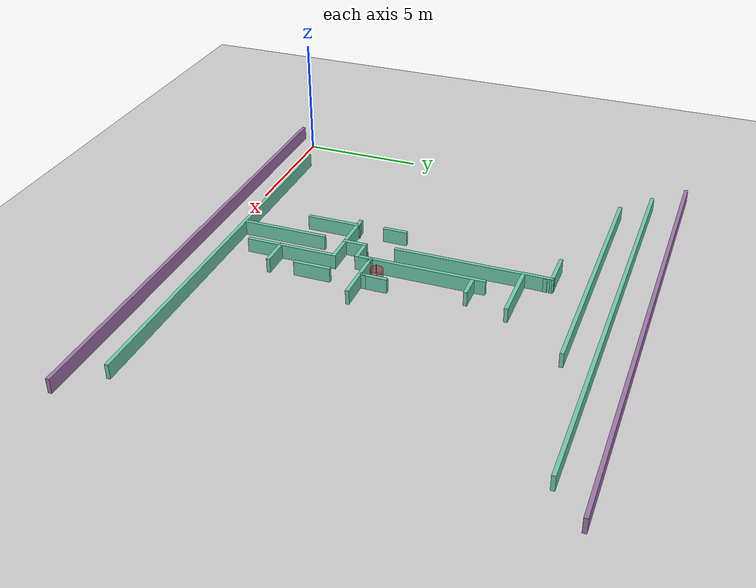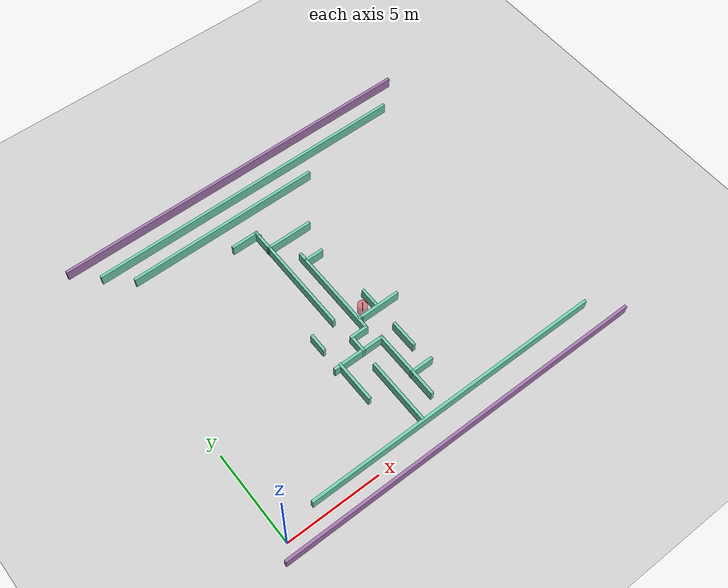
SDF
<sdf version="1.7">
 <world name="default">
  <model name="ground_plane">
   <static>1</static>
   <link name="link">
    <collision name="collision">
     <geometry><plane><normal>0 0 1</normal><size>100 100</size></plane></geometry>
     <surface><friction><ode><mu>100</mu><mu2>50</mu2></ode></friction></surface>
    </collision>
    <visual name="visual">
     <cast_shadows>0</cast_shadows>
     <geometry><plane><normal>0 0 1</normal><size>100 100</size></plane></geometry>
     <material>
      <script><uri>file://media/materials/scripts/gazebo.material</uri><name>Gazebo/Grey</name></script>
     </material>
    </visual>
   </link>
  </model>
  <model name="goal">
   <static>true</static>
   <pose>9.56186 6.95623 0.3 0 0 0</pose>
   <link name="link">
    <visual name="visual">
     <geometry><cylinder><radius>0.25</radius><length>0.6</length></cylinder></geometry>
     <material>
      <script><name>Gazebo/RedTransparent</name><uri>file://media/materials/scripts/gazebo.material</uri></script>
     </material>
    </visual>
   </link>
   <link name="link2">
    <visual name="visual2">
     <geometry><cylinder><radius>0.01</radius><length>1</length></cylinder></geometry>
     <material>
      <script><name>Gazebo/Blue</name><uri>file://media/materials/scripts/gazebo.material</uri></script>
     </material>
    </visual>
   </link>
  </model>
  <model name="complicated_maze">
   <pose>-457.073 -167.601 0 0 -0 0</pose>
   <link name="Wall_108">
    <collision name="Wall_108_Collision">
     <geometry><box><size>1.5 0.15 0.6</size></box></geometry>
     <pose>0 0 0.3 0 -0 0</pose>
    </collision>
    <visual name="Wall_108_Visual">
     <pose>0 0 0.3 0 -0 0</pose>
     <geometry><box><size>1.5 0.15 0.6</size></box></geometry>
     <material>
      <script><uri>file://media/materials/scripts/gazebo.material</uri><name>Gazebo/Grey</name></script>
      <ambient>0.435294 0.796078 0.67451 1</ambient>
      <ambient>1 1 1 1</ambient>
     </material>
     <meta><layer>0</layer></meta>
    </visual>
    <pose>464.348 180.966 0 0 -0 0</pose>
   </link>
   <link name="Wall_109">
    <collision name="Wall_109_Collision">
     <geometry><box><size>1.25004 0.15 0.6</size></box></geometry>
     <pose>0 0 0.3 0 -0 0</pose>
    </collision>
    <visual name="Wall_109_Visual">
     <pose>0 0 0.3 0 -0 0</pose>
     <geometry><box><size>1.25004 0.15 0.6</size></box></geometry>
     <material>
      <script><uri>file://media/materials/scripts/gazebo.material</uri><name>Gazebo/Grey</name></script>
      <ambient>0.435294 0.796078 0.67451 1</ambient>
      <ambient>1 1 1 1</ambient>
     </material>
     <meta><layer>0</layer></meta>
    </visual>
    <pose>465.02 180.416 0 0 -0 -1.57624</pose>
   </link>
   <link name="Wall_113">
    <collision name="Wall_113_Collision">
     <geometry><box><size>5.25 0.15 0.6</size></box></geometry>
     <pose>0 0 0.3 0 -0 0</pose>
    </collision>
    <visual name="Wall_113_Visual">
     <pose>0 0 0.3 0 -0 0</pose>
     <geometry><box><size>5.25 0.15 0.6</size></box></geometry>
     <material>
      <script><uri>file://media/materials/scripts/gazebo.material</uri><name>Gazebo/Grey</name></script>
      <ambient>0.435294 0.796078 0.67451 1</ambient>
      <ambient>1 1 1 1</ambient>
     </material>
     <meta><layer>0</layer></meta>
    </visual>
    <pose>465.032 177.316 0 0 -0 -1.5708</pose>
   </link>
   <link name="Wall_117">
    <collision name="Wall_117_Collision">
     <geometry><box><size>1.75 0.15 0.6</size></box></geometry>
     <pose>0 0 0.3 0 -0 0</pose>
    </collision>
    <visual name="Wall_117_Visual">
     <pose>0 0 0.3 0 -0 0</pose>
     <geometry><box><size>1.75 0.15 0.6</size></box></geometry>
     <material>
      <script><uri>file://media/materials/scripts/gazebo.material</uri><name>Gazebo/Grey</name></script>
      <ambient>0.435294 0.796078 0.67451 1</ambient>
      <ambient>1 1 1 1</ambient>
     </material>
     <meta><layer>0</layer></meta>
    </visual>
    <pose>464.365 172.657 0 0 -0 0</pose>
   </link>
   <link name="Wall_118">
    <collision name="Wall_118_Collision">
     <geometry><box><size>1 0.15 0.6</size></box></geometry>
     <pose>0 0 0.3 0 -0 0</pose>
    </collision>
    <visual name="Wall_118_Visual">
     <pose>0 0 0.3 0 -0 0</pose>
     <geometry><box><size>1 0.15 0.6</size></box></geometry>
     <material>
      <script><uri>file://media/materials/scripts/gazebo.material</uri><name>Gazebo/Grey</name></script>
      <ambient>0.435294 0.796078 0.67451 1</ambient>
      <ambient>1 1 1 1</ambient>
     </material>
     <meta><layer>0</layer></meta>
    </visual>
    <pose>465.165 173.082 0 0 -0 1.5708</pose>
   </link>
   <link name="Wall_120">
    <collision name="Wall_120_Collision">
     <geometry><box><size>1 0.15 0.6</size></box></geometry>
     <pose>0 0 0.3 0 -0 0</pose>
    </collision>
    <visual name="Wall_120_Visual">
     <pose>0 0 0.3 0 -0 0</pose>
     <geometry><box><size>1 0.15 0.6</size></box></geometry>
     <material>
      <script><uri>file://media/materials/scripts/gazebo.material</uri><name>Gazebo/Grey</name></script>
      <ambient>0.435294 0.796078 0.67451 1</ambient>
      <ambient>1 1 1 1</ambient>
     </material>
     <meta><layer>0</layer></meta>
    </visual>
    <pose>463.74 174.228 0 0 -0 -1.5708</pose>
   </link>
   <link name="Wall_123">
    <collision name="Wall_123_Collision">
     <geometry><box><size>1 0.15 0.6</size></box></geometry>
     <pose>0 0 0.3 0 -0 0</pose>
    </collision>
    <visual name="Wall_123_Visual">
     <pose>0 0 0.3 0 -0 0</pose>
     <geometry><box><size>1 0.15 0.6</size></box></geometry>
     <material>
      <script><uri>file://media/materials/scripts/gazebo.material</uri><name>Gazebo/Grey</name></script>
      <ambient>0.435294 0.796078 0.67451 1</ambient>
      <ambient>1 1 1 1</ambient>
     </material>
     <meta><layer>0</layer></meta>
    </visual>
    <pose>465.59 173.507 0 0 -0 0</pose>
   </link>
   <link name="Wall_124">
    <collision name="Wall_124_Collision">
     <geometry><box><size>5.25 0.15 0.6</size></box></geometry>
     <pose>0 0 0.3 0 -0 0</pose>
    </collision>
    <visual name="Wall_124_Visual">
     <pose>0 0 0.3 0 -0 0</pose>
     <geometry><box><size>5.25 0.15 0.6</size></box></geometry>
     <material>
      <script><uri>file://media/materials/scripts/gazebo.material</uri><name>Gazebo/Grey</name></script>
      <ambient>0.435294 0.796078 0.67451 1</ambient>
      <ambient>1 1 1 1</ambient>
     </material>
     <meta><layer>0</layer></meta>
    </visual>
    <pose>466.015 176.057 0 0 -0 1.5708</pose>
   </link>
   <link name="Wall_126">
    <collision name="Wall_126_Collision">
     <geometry><box><size>1 0.15 0.6</size></box></geometry>
     <pose>0 0 0.3 0 -0 0</pose>
    </collision>
    <visual name="Wall_126_Visual">
     <pose>0 0 0.3 0 -0 0</pose>
     <geometry><box><size>1 0.15 0.6</size></box></geometry>
     <material>
      <script><uri>file://media/materials/scripts/gazebo.material</uri><name>Gazebo/Grey</name></script>
      <ambient>0.435294 0.796078 0.67451 1</ambient>
      <ambient>1 1 1 1</ambient>
     </material>
     <meta><layer>0</layer></meta>
    </visual>
    <pose>466.489 178.185 0 0 -0 0</pose>
   </link>
   <link name="Wall_155">
    <collision name="Wall_155_Collision">
     <geometry><box><size>2.25 0.15 0.6</size></box></geometry>
     <pose>0 0 0.3 0 -0 0</pose>
    </collision>
    <visual name="Wall_155_Visual">
     <pose>0 0 0.3 0 -0 0</pose>
     <geometry><box><size>2.25 0.15 0.6</size></box></geometry>
     <material>
      <script><uri>file://media/materials/scripts/gazebo.material</uri><name>Gazebo/Grey</name></script>
      <ambient>0.435294 0.796078 0.67451 1</ambient>
      <ambient>1 1 1 1</ambient>
     </material>
     <meta><layer>0</layer></meta>
    </visual>
    <pose>467.249 174.077 0 0 -0 3.14159</pose>
   </link>
   <link name="Wall_156">
    <collision name="Wall_156_Collision">
     <geometry><box><size>0.25 0.15 0.6</size></box></geometry>
     <pose>0 0 0.3 0 -0 0</pose>
    </collision>
    <visual name="Wall_156_Visual">
     <pose>0 0 0.3 0 -0 0</pose>
     <geometry><box><size>0.25 0.15 0.6</size></box></geometry>
     <material>
      <script><uri>file://media/materials/scripts/gazebo.material</uri><name>Gazebo/Grey</name></script>
      <ambient>0.435294 0.796078 0.67451 1</ambient>
      <ambient>1 1 1 1</ambient>
     </material>
     <meta><layer>0</layer></meta>
    </visual>
    <pose>466.151 174.09 0 0 -0 2.87979</pose>
   </link>
   <link name="Wall_160">
    <collision name="Wall_160_Collision">
     <geometry><box><size>1 0.15 0.6</size></box></geometry>
     <pose>0 0 0.3 0 -0 0</pose>
    </collision>
    <visual name="Wall_160_Visual">
     <pose>0 0 0.3 0 -0 0</pose>
     <geometry><box><size>1 0.15 0.6</size></box></geometry>
     <material>
      <script><uri>file://media/materials/scripts/gazebo.material</uri><name>Gazebo/Grey</name></script>
      <ambient>0.435294 0.796078 0.67451 1</ambient>
      <ambient>1 1 1 1</ambient>
     </material>
     <meta><layer>0</layer></meta>
    </visual>
    <pose>467.15 174.69 0 0 -0 -1.5708</pose>
   </link>
   <link name="Wall_161">
    <collision name="Wall_161_Collision">
     <geometry><box><size>0.25 0.15 0.6</size></box></geometry>
     <pose>0 0 0.3 0 -0 0</pose>
    </collision>
    <visual name="Wall_161_Visual">
     <pose>0 0 0.3 0 -0 0</pose>
     <geometry><box><size>0.25 0.15 0.6</size></box></geometry>
     <material>
      <script><uri>file://media/materials/scripts/gazebo.material</uri><name>Gazebo/Grey</name></script>
      <ambient>0.435294 0.796078 0.67451 1</ambient>
      <ambient>1 1 1 1</ambient>
     </material>
     <meta><layer>0</layer></meta>
    </visual>
    <pose>467.15 174.215 0 0 -0 -1.5708</pose>
   </link>
   <link name="Wall_17">
    <collision name="Wall_17_Collision">
     <geometry><box><size>20 0.15 0.6</size></box></geometry>
     <pose>0 0 0.3 0 -0 0</pose>
    </collision>
    <visual name="Wall_17_Visual">
     <pose>0 0 0.3 0 -0 0</pose>
     <geometry><box><size>20 0.15 0.6</size></box></geometry>
     <material>
      <script><uri>file://media/materials/scripts/gazebo.material</uri><name>Gazebo/Grey</name></script>
      <ambient>0.635294 0.46078 0.67451 1</ambient>
     </material>
     <meta><layer>0</layer></meta>
    </visual>
    <pose>466.442 166.857 0 0 -0 0</pose>
   </link>
   <link name="Wall_173">
    <collision name="Wall_173_Collision">
     <geometry><box><size>1.5 0.15 0.6</size></box></geometry>
     <pose>0 0 0.3 0 -0 0</pose>
    </collision>
    <visual name="Wall_173_Visual">
     <pose>0 0 0.3 0 -0 0</pose>
     <geometry><box><size>1.5 0.15 0.6</size></box></geometry>
     <material>
      <script><uri>file://media/materials/scripts/gazebo.material</uri><name>Gazebo/Grey</name></script>
      <ambient>0.435294 0.796078 0.67451 1</ambient>
      <ambient>1 1 1 1</ambient>
     </material>
     <meta><layer>0</layer></meta>
    </visual>
    <pose>467.196 172.143 0 0 -0 1.5708</pose>
   </link>
   <link name="Wall_182">
    <collision name="Wall_182_Collision">
     <geometry><box><size>3.5 0.15 0.6</size></box></geometry>
     <pose>0 0 0.3 0 -0 0</pose>
    </collision>
    <visual name="Wall_182_Visual">
     <pose>0 0 0.3 0 -0 0</pose>
     <geometry><box><size>3.5 0.15 0.6</size></box></geometry>
     <material>
      <script><uri>file://media/materials/scripts/gazebo.material</uri><name>Gazebo/Grey</name></script>
      <ambient>0.435294 0.796078 0.67451 1</ambient>
      <ambient>1 1 1 1</ambient>
     </material>
     <meta><layer>0</layer></meta>
    </visual>
    <pose>465.126 170.035 0 0 -0 -1.5708</pose>
   </link>
   <link name="Wall_184">
    <collision name="Wall_184_Collision">
     <geometry><box><size>1.25 0.15 0.6</size></box></geometry>
     <pose>0 0 0.3 0 -0 0</pose>
    </collision>
    <visual name="Wall_184_Visual">
     <pose>0 0 0.3 0 -0 0</pose>
     <geometry><box><size>1.25 0.15 0.6</size></box></geometry>
     <material>
      <script><uri>file://media/materials/scripts/gazebo.material</uri><name>Gazebo/Grey</name></script>
      <ambient>0.435294 0.796078 0.67451 1</ambient>
      <ambient>1 1 1 1</ambient>
     </material>
     <meta><layer>0</layer></meta>
    </visual>
    <pose>465.715 172.657 0 0 -0 0</pose>
   </link>
   <link name="Wall_185">
    <collision name="Wall_185_Collision">
     <geometry><box><size>3.75 0.15 0.6</size></box></geometry>
     <pose>0 0 0.3 0 -0 0</pose>
    </collision>
    <visual name="Wall_185_Visual">
     <pose>0 0 0.3 0 -0 0</pose>
     <geometry><box><size>3.75 0.15 0.6</size></box></geometry>
     <material>
      <script><uri>file://media/materials/scripts/gazebo.material</uri><name>Gazebo/Grey</name></script>
      <ambient>0.435294 0.796078 0.67451 1</ambient>
      <ambient>1 1 1 1</ambient>
     </material>
     <meta><layer>0</layer></meta>
    </visual>
    <pose>466.265 170.857 0 0 -0 -1.5708</pose>
   </link>
   <link name="Wall_187">
    <collision name="Wall_187_Collision">
     <geometry><box><size>1.25 0.15 0.6</size></box></geometry>
     <pose>0 0 0.3 0 -0 0</pose>
    </collision>
    <visual name="Wall_187_Visual">
     <pose>0 0 0.3 0 -0 0</pose>
     <geometry><box><size>1.25 0.15 0.6</size></box></geometry>
     <material>
      <script><uri>file://media/materials/scripts/gazebo.material</uri><name>Gazebo/Grey</name></script>
      <ambient>0.435294 0.796078 0.67451 1</ambient>
      <ambient>1 1 1 1</ambient>
     </material>
     <meta><layer>0</layer></meta>
    </visual>
    <pose>466.8 170.395 0 0 -0 0</pose>
   </link>
   <link name="Wall_19">
    <collision name="Wall_19_Collision">
     <geometry><box><size>20 0.15 0.6</size></box></geometry>
     <pose>0 0 0.3 0 -0 0</pose>
    </collision>
    <visual name="Wall_19_Visual">
     <pose>0 0 0.3 0 -0 0</pose>
     <geometry><box><size>20 0.15 0.6</size></box></geometry>
     <material>
      <script><uri>file://media/materials/scripts/gazebo.material</uri><name>Gazebo/Grey</name></script>
      <ambient>0.635294 0.46078 0.67451 1</ambient>
     </material>
     <meta><layer>0</layer></meta>
    </visual>
    <pose>466.442 184.707 0 0 -0 3.14159</pose>
   </link>
   <link name="Wall_193">
    <collision name="Wall_193_Collision">
     <geometry><box><size>2.25 0.15 0.6</size></box></geometry>
     <pose>0 0 0.3 0 -0 0</pose>
    </collision>
    <visual name="Wall_193_Visual">
     <pose>0 0 0.3 0 -0 0</pose>
     <geometry><box><size>2.25 0.15 0.6</size></box></geometry>
     <material>
      <script><uri>file://media/materials/scripts/gazebo.material</uri><name>Gazebo/Grey</name></script>
      <ambient>0.435294 0.796078 0.67451 1</ambient>
      <ambient>1 1 1 1</ambient>
     </material>
     <meta><layer>0</layer></meta>
    </visual>
    <pose>463.87 171.64 0 0 -0 -1.5708</pose>
   </link>
   <link name="Wall_23">
    <collision name="Wall_23_Collision">
     <geometry><box><size>17.5 0.15 0.6</size></box></geometry>
     <pose>0 0 0.3 0 -0 0</pose>
    </collision>
    <visual name="Wall_23_Visual">
     <pose>0 0 0.3 0 -0 0</pose>
     <geometry><box><size>17.5 0.15 0.6</size></box></geometry>
     <material>
      <script><uri>file://media/materials/scripts/gazebo.material</uri><name>Gazebo/Grey</name></script>
      <ambient>0.435294 0.796078 0.67451 1</ambient>
      <ambient>1 1 1 1</ambient>
     </material>
     <meta><layer>0</layer></meta>
    </visual>
    <pose>466.372 183.465 0 0 -0 0</pose>
   </link>
   <link name="Wall_27">
    <collision name="Wall_27_Collision">
     <geometry><box><size>10.5 0.15 0.6</size></box></geometry>
     <pose>0 0 0.3 0 -0 0</pose>
    </collision>
    <visual name="Wall_27_Visual">
     <pose>0 0 0.3 0 -0 0</pose>
     <geometry><box><size>10.5 0.15 0.6</size></box></geometry>
     <material>
      <script><uri>file://media/materials/scripts/gazebo.material</uri><name>Gazebo/Grey</name></script>
      <ambient>0.435294 0.796078 0.67451 1</ambient>
      <ambient>1 1 1 1</ambient>
     </material>
     <meta><layer>0</layer></meta>
    </visual>
    <pose>464.083 182.343 0 0 -0 0</pose>
   </link>
   <link name="Wall_31">
    <collision name="Wall_31_Collision">
     <geometry><box><size>16.25 0.15 0.6</size></box></geometry>
     <pose>0 0 0.3 0 -0 0</pose>
    </collision>
    <visual name="Wall_31_Visual">
     <pose>0 0 0.3 0 -0 0</pose>
     <geometry><box><size>16.25 0.15 0.6</size></box></geometry>
     <material>
      <script><uri>file://media/materials/scripts/gazebo.material</uri><name>Gazebo/Grey</name></script>
      <ambient>0.435294 0.796078 0.67451 1</ambient>
      <ambient>1 1 1 1</ambient>
     </material>
     <meta><layer>0</layer></meta>
    </visual>
    <pose>467.01 168.243 0 0 -0 3.14159</pose>
   </link>
   <link name="Wall_95">
    <collision name="Wall_95_Collision">
     <geometry><box><size>2.52998 0.15 0.6</size></box></geometry>
     <pose>0 0 0.3 0 -0 0</pose>
    </collision>
    <visual name="Wall_95_Visual">
     <pose>0 0 0.3 0 -0 0</pose>
     <geometry><box><size>2.52998 0.15 0.6</size></box></geometry>
     <material>
      <script><uri>file://media/materials/scripts/gazebo.material</uri><name>Gazebo/Grey</name></script>
      <ambient>0.435294 0.796078 0.67451 1</ambient>
      <ambient>1 1 1 1</ambient>
     </material>
     <meta><layer>0</layer></meta>
    </visual>
    <pose>466.207 179.866 0 0 -0 3.14159</pose>
   </link>
   <link name="Wall_97">
    <collision name="Wall_97_Collision">
     <geometry><box><size>0.15 0.15 0.6</size></box></geometry>
     <pose>0 0 0.3 0 -0 0</pose>
    </collision>
    <visual name="Wall_97_Visual">
     <pose>0 0 0.3 0 -0 0</pose>
     <geometry><box><size>0.15 0.15 0.6</size></box></geometry>
     <material>
      <script><uri>file://media/materials/scripts/gazebo.material</uri><name>Gazebo/Grey</name></script>
      <ambient>0.435294 0.796078 0.67451 1</ambient>
      <ambient>1 1 1 1</ambient>
     </material>
     <meta><layer>0</layer></meta>
    </visual>
    <pose>465.047 180.716 0 0 -0 0</pose>
   </link>
   <static>1</static>
  </model>
 </world>
</sdf>
